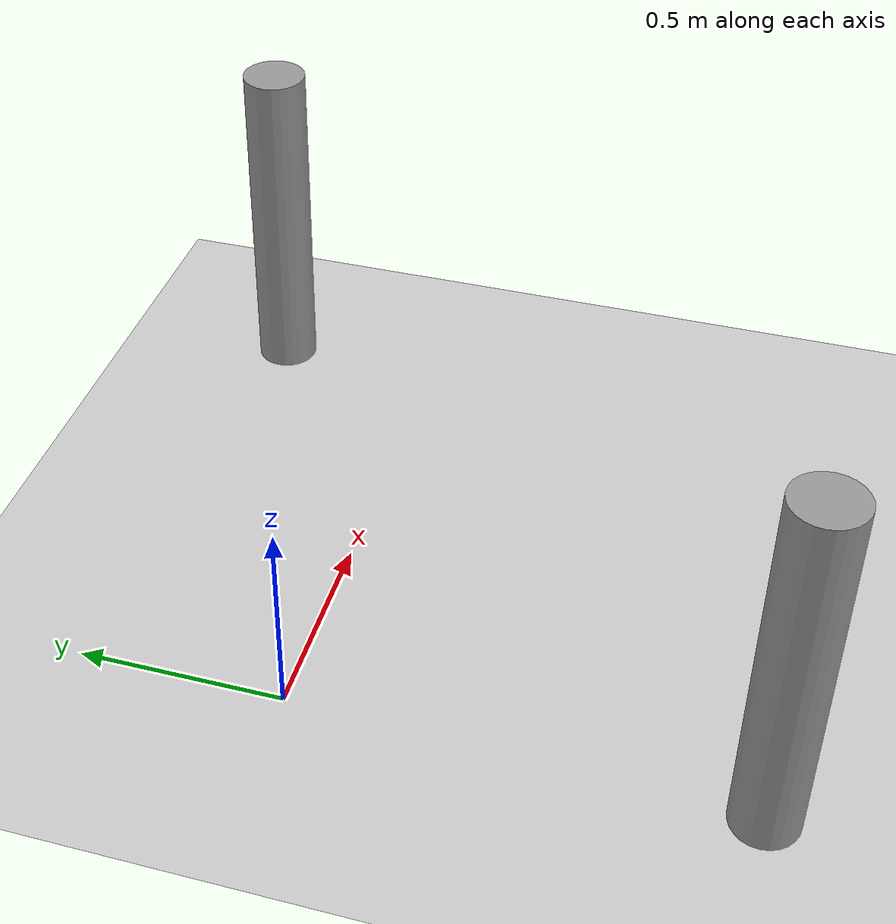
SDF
<sdf version="1.6">
 <world name="default">
  <light name="sun" type="directional">
   <pose>0 0 10 0 -0 0</pose>
   <diffuse>0.8 0.8 0.8 1</diffuse>
   <specular>0.2 0.2 0.2 1</specular>
   <attenuation>
    <range>1000</range>
    <constant>0.9</constant>
    <linear>0.01</linear>
    <quadratic>0.001</quadratic>
   </attenuation>
   <direction>-0.5 0.1 -0.9</direction>
  </light>
  <model name="ground_plane">
   <static>1</static>
   <link name="link">
    <collision name="collision">
     <geometry><plane><normal>0 0 1</normal><size>100 100</size></plane></geometry>
     <surface>
      <contact><collide_bitmask>65535</collide_bitmask></contact>
      <friction><ode><mu>100</mu><mu2>50</mu2></ode></friction>
     </surface>
    </collision>
    <visual name="visual">
     <cast_shadows>0</cast_shadows>
     <geometry><plane><normal>0 0 1</normal><size>100 100</size></plane></geometry>
     <material>
      <script><uri>file://media/materials/scripts/gazebo.material</uri><name>Gazebo/Grey</name></script>
     </material>
    </visual>
   </link>
  </model>
  <gravity>0 0 -9.8</gravity>
  <magnetic_field>6e-06 2.3e-05 -4.2e-05</magnetic_field>
  <atmosphere type="adiabatic"/>
  <physics name="default_physics" default="0" type="ode">
   <max_step_size>0.001</max_step_size>
   <real_time_factor>1</real_time_factor>
   <real_time_update_rate>1000</real_time_update_rate>
  </physics>
  <scene><ambient>0.4 0.4 0.4 1</ambient><background>0.7 0.7 0.7 1</background><shadows>1</shadows></scene>
  <audio><device>default</device></audio>
  <spherical_coordinates>
   <surface_model>EARTH_WGS84</surface_model>
   <latitude_deg>0</latitude_deg>
   <longitude_deg>0</longitude_deg>
   <elevation>0</elevation>
   <heading_deg>0</heading_deg>
  </spherical_coordinates>
  <model name="towerA">
   <link name="link">
    <inertial>
     <mass>1</mass>
     <inertia><ixx>0.145833</ixx><ixy>0</ixy><ixz>0</ixz><iyy>0.145833</iyy><iyz>0</iyz><izz>0.125</izz></inertia>
    </inertial>
    <visual name="visual">
     <geometry><cylinder><radius>0.08</radius><length>0.9</length></cylinder></geometry>
     <material>
      <script><name>Gazebo/Grey</name><uri>file://media/materials/scripts/gazebo.material</uri></script>
      <shader type="vertex"><normal_map>__default__</normal_map></shader>
      <ambient>0.3 0.3 0.3 1</ambient>
      <diffuse>0.7 0.7 0.7 1</diffuse>
      <specular>0.01 0.01 0.01 1</specular>
      <emissive>0 0 0 1</emissive>
     </material>
    </visual>
    <collision name="collision">
     <geometry><cylinder><radius>0.086492</radius><length>0.935484</length></cylinder></geometry>
     <surface>
      <friction>
       <ode><mu>1</mu><mu2>1</mu2><fdir1>0 0 0</fdir1><slip1>0</slip1><slip2>0</slip2></ode>
       <torsional>
        <coefficient>1</coefficient>
        <patch_radius>0</patch_radius>
        <surface_radius>0</surface_radius>
        <use_patch_radius>1</use_patch_radius>
        <ode><slip>0</slip></ode>
       </torsional>
      </friction>
      <bounce><restitution_coefficient>0</restitution_coefficient><threshold>1e+06</threshold></bounce>
      <contact>
       <collide_without_contact>0</collide_without_contact>
       <collide_without_contact_bitmask>1</collide_without_contact_bitmask>
       <collide_bitmask>1</collide_bitmask>
       <ode>
        <soft_cfm>0</soft_cfm>
        <soft_erp>0.2</soft_erp>
        <kp>1e+13</kp>
        <kd>1</kd>
        <max_vel>0.01</max_vel>
        <min_depth>0</min_depth>
       </ode>
       <bullet>
        <split_impulse>1</split_impulse>
        <split_impulse_penetration_threshold>-0.01</split_impulse_penetration_threshold>
        <soft_cfm>0</soft_cfm>
        <soft_erp>0.2</soft_erp>
        <kp>1e+13</kp>
        <kd>1</kd>
       </bullet>
      </contact>
     </surface>
    </collision>
   </link>
   <static>0</static>
   <pose>-0.043692 -1.09245 0.467734 0 -0 2.9e-05</pose>
  </model>
  <model name="towerB">
   <link name="link">
    <inertial>
     <mass>1</mass>
     <inertia><ixx>0.145833</ixx><ixy>0</ixy><ixz>0</ixz><iyy>0.145833</iyy><iyz>0</iyz><izz>0.125</izz></inertia>
    </inertial>
    <visual name="visual">
     <geometry><cylinder><radius>0.08</radius><length>0.9</length></cylinder></geometry>
     <material>
      <script><name>Gazebo/Grey</name><uri>file://media/materials/scripts/gazebo.material</uri></script>
      <shader type="vertex"><normal_map>__default__</normal_map></shader>
      <ambient>0.3 0.3 0.3 1</ambient>
      <diffuse>0.7 0.7 0.7 1</diffuse>
      <specular>0.01 0.01 0.01 1</specular>
      <emissive>0 0 0 1</emissive>
     </material>
    </visual>
    <collision name="collision">
     <geometry><cylinder><radius>0.076835</radius><length>0.844121</length></cylinder></geometry>
     <surface>
      <friction>
       <ode><mu>1</mu><mu2>1</mu2><fdir1>0 0 0</fdir1><slip1>0</slip1><slip2>0</slip2></ode>
       <torsional>
        <coefficient>1</coefficient>
        <patch_radius>0</patch_radius>
        <surface_radius>0</surface_radius>
        <use_patch_radius>1</use_patch_radius>
        <ode><slip>0</slip></ode>
       </torsional>
      </friction>
      <bounce><restitution_coefficient>0</restitution_coefficient><threshold>1e+06</threshold></bounce>
      <contact>
       <collide_without_contact>0</collide_without_contact>
       <collide_without_contact_bitmask>1</collide_without_contact_bitmask>
       <collide_bitmask>1</collide_bitmask>
       <ode>
        <soft_cfm>0</soft_cfm>
        <soft_erp>0.2</soft_erp>
        <kp>1e+13</kp>
        <kd>1</kd>
        <max_vel>0.01</max_vel>
        <min_depth>0</min_depth>
       </ode>
       <bullet>
        <split_impulse>1</split_impulse>
        <split_impulse_penetration_threshold>-0.01</split_impulse_penetration_threshold>
        <soft_cfm>0</soft_cfm>
        <soft_erp>0.2</soft_erp>
        <kp>1e+13</kp>
        <kd>1</kd>
       </bullet>
      </contact>
     </surface>
    </collision>
   </link>
   <static>0</static>
   <pose>1.27024 0.437788 0.422052 -1e-06 -0 6.5e-05</pose>
  </model>
 </world>
</sdf>
